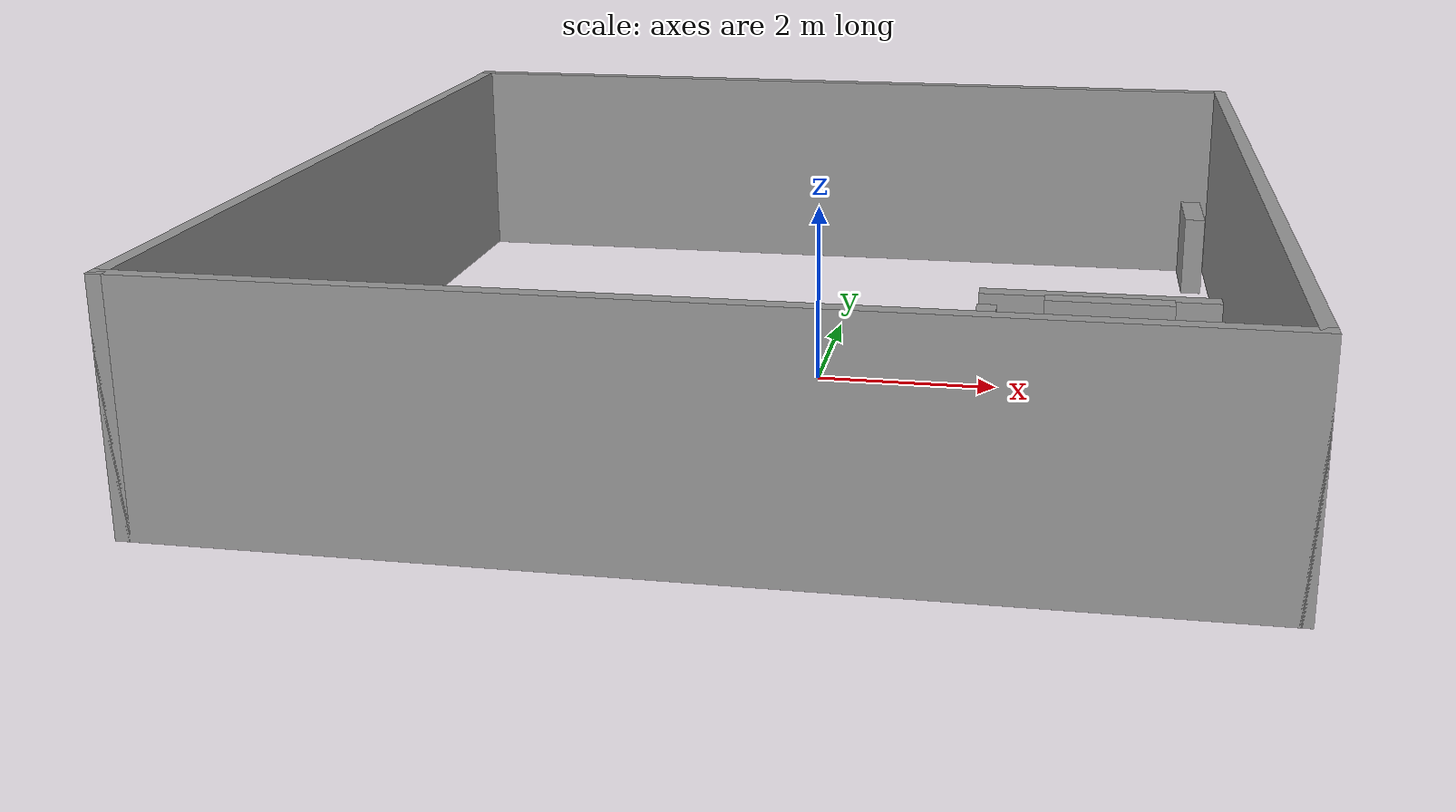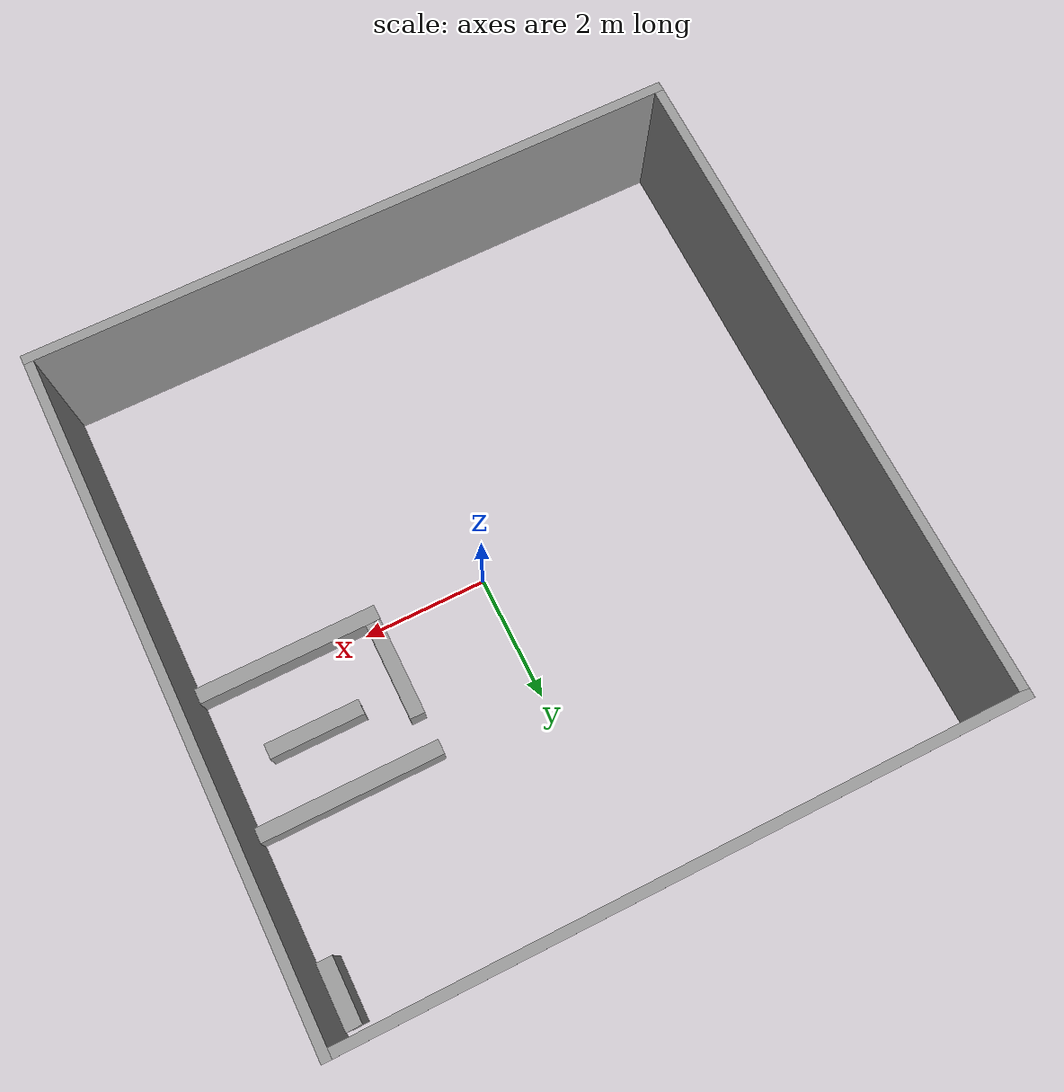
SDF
<?xml version='1.0'?>
<sdf version='1.7'>
  <model name='Laboratory_map'>
    <link name='Wall_0'>
      <pose>3.2 2.1 -0 0 -0 0</pose>
      <self_collide>0</self_collide>
      <inertial>
        <pose>0 0 0 0 -0 0</pose>
        <inertia>
          <ixx>79.3608</ixx>
          <ixy>0</ixy>
          <ixz>0</ixz>
          <iyy>2386.5</iyy>
          <iyz>0</iyz>
          <izz>2336.86</izz>
        </inertia>
        <mass>3096</mass>
      </inertial>
      <enable_wind>0</enable_wind>
      <kinematic>0</kinematic>
      <gravity>1</gravity>
      <visual name='Wall_0_Visual'>
        <pose>0 0 0.25 0 -0 0</pose>
        <geometry>
          <box>
            <size>3 0.24 0.5</size>
          </box>
        </geometry>
        <material>
          <script>
            <uri>file://media/materials/scripts/gazebo.material</uri>
            <name>Gazebo/Grey</name>
          </script>
          <ambient>1 1 1 1</ambient>
          <shader type='pixel'>
            <normal_map>__default__</normal_map>
          </shader>
          <diffuse>0.7 0.7 0.7 1</diffuse>
          <specular>0.01 0.01 0.01 1</specular>
          <emissive>0 0 0 1</emissive>
        </material>
        <meta>
          <layer>0</layer>
        </meta>
        <transparency>0</transparency>
        <cast_shadows>1</cast_shadows>
      </visual>
      <collision name='Wall_0_Collision'>
        <laser_retro>0</laser_retro>
        <max_contacts>10</max_contacts>
        <pose>0 0 0.25 0 -0 0</pose>
        <geometry>
          <box>
            <size>3 0.24 0.5</size>
          </box>
        </geometry>
        <surface>
          <friction>
            <ode>
              <mu>1</mu>
              <mu2>1</mu2>
              <fdir1>0 0 0</fdir1>
              <slip1>0</slip1>
              <slip2>0</slip2>
            </ode>
            <torsional>
              <coefficient>1</coefficient>
              <patch_radius>0</patch_radius>
              <surface_radius>0</surface_radius>
              <use_patch_radius>1</use_patch_radius>
              <ode>
                <slip>0</slip>
              </ode>
            </torsional>
          </friction>
          <bounce>
            <restitution_coefficient>0</restitution_coefficient>
            <threshold>1e+06</threshold>
          </bounce>
          <contact>
            <collide_without_contact>0</collide_without_contact>
            <collide_without_contact_bitmask>1</collide_without_contact_bitmask>
            <collide_bitmask>1</collide_bitmask>
            <ode>
              <soft_cfm>0</soft_cfm>
              <soft_erp>0.2</soft_erp>
              <kp>1e+13</kp>
              <kd>1</kd>
              <max_vel>0.01</max_vel>
              <min_depth>0</min_depth>
            </ode>
            <bullet>
              <split_impulse>1</split_impulse>
              <split_impulse_penetration_threshold>-0.01</split_impulse_penetration_threshold>
              <soft_cfm>0</soft_cfm>
              <soft_erp>0.2</soft_erp>
              <kp>1e+13</kp>
              <kd>1</kd>
            </bullet>
          </contact>
        </surface>
      </collision>
    </link>
    <link name='Wall_1'>
      <pose>-5.55 -0 -0 0 -0 -1.5708</pose>
      <self_collide>0</self_collide>
      <inertial>
        <pose>0 0 0 0 -0 0</pose>
        <inertia>
          <ixx>15865.5</ixx>
          <ixy>0</ixy>
          <ixz>0</ixz>
          <iyy>302697</iyy>
          <iyz>0</iyz>
          <izz>286945</izz>
        </inertia>
        <mass>30352.5</mass>
      </inertial>
      <enable_wind>0</enable_wind>
      <kinematic>0</kinematic>
      <gravity>1</gravity>
      <visual name='Wall_1_Visual'>
        <pose>0 0 1.25 0 -0 0</pose>
        <geometry>
          <box>
            <size>10.65 0.15 2.5</size>
          </box>
        </geometry>
        <material>
          <script>
            <uri>file://media/materials/scripts/gazebo.material</uri>
            <name>Gazebo/Grey</name>
          </script>
          <ambient>0.729 0.741 0.714 1</ambient>
          <shader type='pixel'>
            <normal_map>__default__</normal_map>
          </shader>
          <diffuse>0.7 0.7 0.7 1</diffuse>
          <specular>0.01 0.01 0.01 1</specular>
          <emissive>0 0 0 1</emissive>
        </material>
        <meta>
          <layer>0</layer>
        </meta>
        <transparency>0</transparency>
        <cast_shadows>1</cast_shadows>
      </visual>
      <collision name='Wall_1_Collision'>
        <laser_retro>0</laser_retro>
        <max_contacts>10</max_contacts>
        <pose>0 0 1.25 0 -0 0</pose>
        <geometry>
          <box>
            <size>10.65 0.15 2.5</size>
          </box>
        </geometry>
        <surface>
          <friction>
            <ode>
              <mu>1</mu>
              <mu2>1</mu2>
              <fdir1>0 0 0</fdir1>
              <slip1>0</slip1>
              <slip2>0</slip2>
            </ode>
            <torsional>
              <coefficient>1</coefficient>
              <patch_radius>0</patch_radius>
              <surface_radius>0</surface_radius>
              <use_patch_radius>1</use_patch_radius>
              <ode>
                <slip>0</slip>
              </ode>
            </torsional>
          </friction>
          <bounce>
            <restitution_coefficient>0</restitution_coefficient>
            <threshold>1e+06</threshold>
          </bounce>
          <contact>
            <collide_without_contact>0</collide_without_contact>
            <collide_without_contact_bitmask>1</collide_without_contact_bitmask>
            <collide_bitmask>1</collide_bitmask>
            <ode>
              <soft_cfm>0</soft_cfm>
              <soft_erp>0.2</soft_erp>
              <kp>1e+13</kp>
              <kd>1</kd>
              <max_vel>0.01</max_vel>
              <min_depth>0</min_depth>
            </ode>
            <bullet>
              <split_impulse>1</split_impulse>
              <split_impulse_penetration_threshold>-0.01</split_impulse_penetration_threshold>
              <soft_cfm>0</soft_cfm>
              <soft_erp>0.2</soft_erp>
              <kp>1e+13</kp>
              <kd>1</kd>
            </bullet>
          </contact>
        </surface>
      </collision>
    </link>
    <link name='Wall_2'>
      <pose>-0.425 -5.25 0 0 -0 0</pose>
      <self_collide>0</self_collide>
      <inertial>
        <pose>0 0 0 0 -0 0</pose>
        <inertia>
          <ixx>17355.2</ixx>
          <ixy>0</ixy>
          <ixz>0</ixz>
          <iyy>392820</iyy>
          <iyz>0</iyz>
          <izz>375589</izz>
        </inertia>
        <mass>33202.5</mass>
      </inertial>
      <enable_wind>0</enable_wind>
      <kinematic>0</kinematic>
      <gravity>1</gravity>
      <visual name='Wall_2_Visual'>
        <pose>0 0 1.25 0 -0 0</pose>
        <geometry>
          <box>
            <size>10.4 0.15 2.5</size>
          </box>
        </geometry>
        <material>
          <script>
            <uri>file://media/materials/scripts/gazebo.material</uri>
            <name>Gazebo/Grey</name>
          </script>
          <ambient>0.729 0.741 0.714 1</ambient>
          <shader type='pixel'>
            <normal_map>__default__</normal_map>
          </shader>
          <diffuse>0.7 0.7 0.7 1</diffuse>
          <specular>0.01 0.01 0.01 1</specular>
          <emissive>0 0 0 1</emissive>
        </material>
        <meta>
          <layer>0</layer>
        </meta>
        <transparency>0</transparency>
        <cast_shadows>1</cast_shadows>
      </visual>
      <collision name='Wall_2_Collision'>
        <laser_retro>0</laser_retro>
        <max_contacts>10</max_contacts>
        <pose>0 0 1.25 0 -0 0</pose>
        <geometry>
          <box>
            <size>10.4 0.15 2.5</size>
          </box>
        </geometry>
        <surface>
          <friction>
            <ode>
              <mu>1</mu>
              <mu2>1</mu2>
              <fdir1>0 0 0</fdir1>
              <slip1>0</slip1>
              <slip2>0</slip2>
            </ode>
            <torsional>
              <coefficient>1</coefficient>
              <patch_radius>0</patch_radius>
              <surface_radius>0</surface_radius>
              <use_patch_radius>1</use_patch_radius>
              <ode>
                <slip>0</slip>
              </ode>
            </torsional>
          </friction>
          <bounce>
            <restitution_coefficient>0</restitution_coefficient>
            <threshold>1e+06</threshold>
          </bounce>
          <contact>
            <collide_without_contact>0</collide_without_contact>
            <collide_without_contact_bitmask>1</collide_without_contact_bitmask>
            <collide_bitmask>1</collide_bitmask>
            <ode>
              <soft_cfm>0</soft_cfm>
              <soft_erp>0.2</soft_erp>
              <kp>1e+13</kp>
              <kd>1</kd>
              <max_vel>0.01</max_vel>
              <min_depth>0</min_depth>
            </ode>
            <bullet>
              <split_impulse>1</split_impulse>
              <split_impulse_penetration_threshold>-0.01</split_impulse_penetration_threshold>
              <soft_cfm>0</soft_cfm>
              <soft_erp>0.2</soft_erp>
              <kp>1e+13</kp>
              <kd>1</kd>
            </bullet>
          </contact>
        </surface>
      </collision>
    </link>
    <link name='Wall_3'>
      <pose>4.7 0 0 0 -0 -1.5708</pose>
      <self_collide>0</self_collide>
      <inertial>
        <pose>0 0 0 0 -0 0</pose>
        <inertia>
          <ixx>15865.5</ixx>
          <ixy>0</ixy>
          <ixz>0</ixz>
          <iyy>302697</iyy>
          <iyz>0</iyz>
          <izz>286945</izz>
        </inertia>
        <mass>30352.5</mass>
      </inertial>
      <enable_wind>0</enable_wind>
      <kinematic>0</kinematic>
      <gravity>1</gravity>
      <visual name='Wall_3_Visual'>
        <pose>0 0 1.25 0 -0 0</pose>
        <geometry>
          <box>
            <size>10.65 0.15 2.5</size>
          </box>
        </geometry>
        <material>
          <script>
            <uri>file://media/materials/scripts/gazebo.material</uri>
            <name>Gazebo/Grey</name>
          </script>
          <ambient>0.729 0.741 0.714 1</ambient>
          <shader type='pixel'>
            <normal_map>__default__</normal_map>
          </shader>
          <diffuse>0.7 0.7 0.7 1</diffuse>
          <specular>0.01 0.01 0.01 1</specular>
          <emissive>0 0 0 1</emissive>
        </material>
        <meta>
          <layer>0</layer>
        </meta>
        <transparency>0</transparency>
        <cast_shadows>1</cast_shadows>
      </visual>
      <collision name='Wall_3_Collision'>
        <laser_retro>0</laser_retro>
        <max_contacts>10</max_contacts>
        <pose>0 0 1.25 0 -0 0</pose>
        <geometry>
          <box>
            <size>10.65 0.15 2.5</size>
          </box>
        </geometry>
        <surface>
          <friction>
            <ode>
              <mu>1</mu>
              <mu2>1</mu2>
              <fdir1>0 0 0</fdir1>
              <slip1>0</slip1>
              <slip2>0</slip2>
            </ode>
            <torsional>
              <coefficient>1</coefficient>
              <patch_radius>0</patch_radius>
              <surface_radius>0</surface_radius>
              <use_patch_radius>1</use_patch_radius>
              <ode>
                <slip>0</slip>
              </ode>
            </torsional>
          </friction>
          <bounce>
            <restitution_coefficient>0</restitution_coefficient>
            <threshold>1e+06</threshold>
          </bounce>
          <contact>
            <collide_without_contact>0</collide_without_contact>
            <collide_without_contact_bitmask>1</collide_without_contact_bitmask>
            <collide_bitmask>1</collide_bitmask>
            <ode>
              <soft_cfm>0</soft_cfm>
              <soft_erp>0.2</soft_erp>
              <kp>1e+13</kp>
              <kd>1</kd>
              <max_vel>0.01</max_vel>
              <min_depth>0</min_depth>
            </ode>
            <bullet>
              <split_impulse>1</split_impulse>
              <split_impulse_penetration_threshold>-0.01</split_impulse_penetration_threshold>
              <soft_cfm>0</soft_cfm>
              <soft_erp>0.2</soft_erp>
              <kp>1e+13</kp>
              <kd>1</kd>
            </bullet>
          </contact>
        </surface>
      </collision>
    </link>
    <link name='Wall_4'>
      <pose>1.82 0.75 0 0 -0 1.5708</pose>
      <self_collide>0</self_collide>
      <inertial>
        <pose>0 0 0 0 -0 0</pose>
        <inertia>
          <ixx>41.6644</ixx>
          <ixy>0</ixy>
          <ixz>0</ixz>
          <iyy>369.863</iyy>
          <iyz>0</iyz>
          <izz>343.803</izz>
        </inertia>
        <mass>1625.4</mass>
      </inertial>
      <enable_wind>0</enable_wind>
      <kinematic>0</kinematic>
      <gravity>1</gravity>
      <visual name='Wall_4_Visual'>
        <pose>0 0 0.25 0 -0 0</pose>
        <geometry>
          <box>
            <size>1.575 0.24 0.5</size>
          </box>
        </geometry>
        <material>
          <script>
            <uri>file://media/materials/scripts/gazebo.material</uri>
            <name>Gazebo/Grey</name>
          </script>
          <ambient>1 1 1 1</ambient>
          <shader type='pixel'>
            <normal_map>__default__</normal_map>
          </shader>
          <diffuse>0.7 0.7 0.7 1</diffuse>
          <specular>0.01 0.01 0.01 1</specular>
          <emissive>0 0 0 1</emissive>
        </material>
        <meta>
          <layer>0</layer>
        </meta>
        <transparency>0</transparency>
        <cast_shadows>1</cast_shadows>
      </visual>
      <collision name='Wall_4_Collision'>
        <laser_retro>0</laser_retro>
        <max_contacts>10</max_contacts>
        <pose>0 0 0.25 0 -0 0</pose>
        <geometry>
          <box>
            <size>1.575 0.24 0.5</size>
          </box>
        </geometry>
        <surface>
          <friction>
            <ode>
              <mu>1</mu>
              <mu2>1</mu2>
              <fdir1>0 0 0</fdir1>
              <slip1>0</slip1>
              <slip2>0</slip2>
            </ode>
            <torsional>
              <coefficient>1</coefficient>
              <patch_radius>0</patch_radius>
              <surface_radius>0</surface_radius>
              <use_patch_radius>1</use_patch_radius>
              <ode>
                <slip>0</slip>
              </ode>
            </torsional>
          </friction>
          <bounce>
            <restitution_coefficient>0</restitution_coefficient>
            <threshold>1e+06</threshold>
          </bounce>
          <contact>
            <collide_without_contact>0</collide_without_contact>
            <collide_without_contact_bitmask>1</collide_without_contact_bitmask>
            <collide_bitmask>1</collide_bitmask>
            <ode>
              <soft_cfm>0</soft_cfm>
              <soft_erp>0.2</soft_erp>
              <kp>1e+13</kp>
              <kd>1</kd>
              <max_vel>0.01</max_vel>
              <min_depth>0</min_depth>
            </ode>
            <bullet>
              <split_impulse>1</split_impulse>
              <split_impulse_penetration_threshold>-0.01</split_impulse_penetration_threshold>
              <soft_cfm>0</soft_cfm>
              <soft_erp>0.2</soft_erp>
              <kp>1e+13</kp>
              <kd>1</kd>
            </bullet>
          </contact>
        </surface>
      </collision>
    </link>
    <link name='Wall_5'>
      <pose>3.2 -0.16 0 0 -0 0</pose>
      <self_collide>0</self_collide>
      <inertial>
        <pose>0 0 0 0 -0 0</pose>
        <inertia>
          <ixx>79.3608</ixx>
          <ixy>0</ixy>
          <ixz>0</ixz>
          <iyy>2386.5</iyy>
          <iyz>0</iyz>
          <izz>2336.86</izz>
        </inertia>
        <mass>3096</mass>
      </inertial>
      <enable_wind>0</enable_wind>
      <kinematic>0</kinematic>
      <gravity>1</gravity>
      <visual name='Wall_5_Visual'>
        <pose>0 0 0.25 0 -0 0</pose>
        <geometry>
          <box>
            <size>3 0.24 0.5</size>
          </box>
        </geometry>
        <material>
          <script>
            <uri>file://media/materials/scripts/gazebo.material</uri>
            <name>Gazebo/Grey</name>
          </script>
          <ambient>1 1 1 1</ambient>
          <shader type='pixel'>
            <normal_map>__default__</normal_map>
          </shader>
          <diffuse>0.7 0.7 0.7 1</diffuse>
          <specular>0.01 0.01 0.01 1</specular>
          <emissive>0 0 0 1</emissive>
        </material>
        <meta>
          <layer>0</layer>
        </meta>
        <transparency>0</transparency>
        <cast_shadows>1</cast_shadows>
      </visual>
      <collision name='Wall_5_Collision'>
        <laser_retro>0</laser_retro>
        <max_contacts>10</max_contacts>
        <pose>0 0 0.25 0 -0 0</pose>
        <geometry>
          <box>
            <size>3 0.24 0.5</size>
          </box>
        </geometry>
        <surface>
          <friction>
            <ode>
              <mu>1</mu>
              <mu2>1</mu2>
              <fdir1>0 0 0</fdir1>
              <slip1>0</slip1>
              <slip2>0</slip2>
            </ode>
            <torsional>
              <coefficient>1</coefficient>
              <patch_radius>0</patch_radius>
              <surface_radius>0</surface_radius>
              <use_patch_radius>1</use_patch_radius>
              <ode>
                <slip>0</slip>
              </ode>
            </torsional>
          </friction>
          <bounce>
            <restitution_coefficient>0</restitution_coefficient>
            <threshold>1e+06</threshold>
          </bounce>
          <contact>
            <collide_without_contact>0</collide_without_contact>
            <collide_without_contact_bitmask>1</collide_without_contact_bitmask>
            <collide_bitmask>1</collide_bitmask>
            <ode>
              <soft_cfm>0</soft_cfm>
              <soft_erp>0.2</soft_erp>
              <kp>1e+13</kp>
              <kd>1</kd>
              <max_vel>0.01</max_vel>
              <min_depth>0</min_depth>
            </ode>
            <bullet>
              <split_impulse>1</split_impulse>
              <split_impulse_penetration_threshold>-0.01</split_impulse_penetration_threshold>
              <soft_cfm>0</soft_cfm>
              <soft_erp>0.2</soft_erp>
              <kp>1e+13</kp>
              <kd>1</kd>
            </bullet>
          </contact>
        </surface>
      </collision>
    </link>
    <link name='Wall_6'>
      <pose>-0.425 5.25 -0 0 -0 3.14159</pose>
      <self_collide>0</self_collide>
      <inertial>
        <pose>0 0 0 0 -0 0</pose>
        <inertia>
          <ixx>17355.2</ixx>
          <ixy>0</ixy>
          <ixz>0</ixz>
          <iyy>392820</iyy>
          <iyz>0</iyz>
          <izz>375589</izz>
        </inertia>
        <mass>33202.5</mass>
      </inertial>
      <enable_wind>0</enable_wind>
      <kinematic>0</kinematic>
      <gravity>1</gravity>
      <visual name='Wall_6_Visual'>
        <pose>0 0 1.25 0 -0 0</pose>
        <geometry>
          <box>
            <size>10.4 0.15 2.5</size>
          </box>
        </geometry>
        <material>
          <script>
            <uri>file://media/materials/scripts/gazebo.material</uri>
            <name>Gazebo/Grey</name>
          </script>
          <ambient>0.729 0.741 0.714 1</ambient>
          <shader type='pixel'>
            <normal_map>__default__</normal_map>
          </shader>
          <diffuse>0.7 0.7 0.7 1</diffuse>
          <specular>0.01 0.01 0.01 1</specular>
          <emissive>0 0 0 1</emissive>
        </material>
        <meta>
          <layer>0</layer>
        </meta>
        <transparency>0</transparency>
        <cast_shadows>1</cast_shadows>
      </visual>
      <collision name='Wall_6_Collision'>
        <laser_retro>0</laser_retro>
        <max_contacts>10</max_contacts>
        <pose>0 0 1.25 0 -0 0</pose>
        <geometry>
          <box>
            <size>10.4 0.15 2.5</size>
          </box>
        </geometry>
        <surface>
          <friction>
            <ode>
              <mu>1</mu>
              <mu2>1</mu2>
              <fdir1>0 0 0</fdir1>
              <slip1>0</slip1>
              <slip2>0</slip2>
            </ode>
            <torsional>
              <coefficient>1</coefficient>
              <patch_radius>0</patch_radius>
              <surface_radius>0</surface_radius>
              <use_patch_radius>1</use_patch_radius>
              <ode>
                <slip>0</slip>
              </ode>
            </torsional>
          </friction>
          <bounce>
            <restitution_coefficient>0</restitution_coefficient>
            <threshold>1e+06</threshold>
          </bounce>
          <contact>
            <collide_without_contact>0</collide_without_contact>
            <collide_without_contact_bitmask>1</collide_without_contact_bitmask>
            <collide_bitmask>1</collide_bitmask>
            <ode>
              <soft_cfm>0</soft_cfm>
              <soft_erp>0.2</soft_erp>
              <kp>1e+13</kp>
              <kd>1</kd>
              <max_vel>0.01</max_vel>
              <min_depth>0</min_depth>
            </ode>
            <bullet>
              <split_impulse>1</split_impulse>
              <split_impulse_penetration_threshold>-0.01</split_impulse_penetration_threshold>
              <soft_cfm>0</soft_cfm>
              <soft_erp>0.2</soft_erp>
              <kp>1e+13</kp>
              <kd>1</kd>
            </bullet>
          </contact>
        </surface>
      </collision>
    </link>
    <link name='Wall_7'>
      <inertial>
        <mass>700</mass>
        <inertia>
          <ixx>116.667</ixx>
          <ixy>0</ixy>
          <ixz>0</ixz>
          <iyy>116.667</iyy>
          <iyz>0</iyz>
          <izz>116.667</izz>
        </inertia>
        <pose>0 0 0 0 -0 0</pose>
      </inertial>
      <pose>4.4 4.6 0.5 0 -0 0</pose>
      <gravity>1</gravity>
      <self_collide>0</self_collide>
      <kinematic>0</kinematic>
      <enable_wind>0</enable_wind>
      <visual name='Wall_7_Visual'>
        <pose>0 0 0 0 -0 0</pose>
        <geometry>
          <box>
            <size>0.25 1 1</size>
          </box>
        </geometry>
        <material>
          <lighting>1</lighting>
          <script>
            <uri>file://media/materials/scripts/gazebo.material</uri>
            <name>Gazebo/Grey</name>
          </script>
          <shader type='pixel'>
            <normal_map>__default__</normal_map>
          </shader>
          <ambient>0.3 0.3 0.3 1</ambient>
          <diffuse>0.7 0.7 0.7 1</diffuse>
          <specular>0.01 0.01 0.01 1</specular>
          <emissive>0 0 0 1</emissive>
        </material>
        <transparency>0</transparency>
        <cast_shadows>1</cast_shadows>
      </visual>
      <collision name='Wall_7_Collision'>
        <laser_retro>0</laser_retro>
        <max_contacts>10</max_contacts>
        <pose>0 0 0 0 -0 0</pose>
        <geometry>
          <box>
            <size>0.25 1 1</size>
          </box>
        </geometry>
        <surface>
          <friction>
            <ode>
              <mu>1</mu>
              <mu2>1</mu2>
              <fdir1>0 0 0</fdir1>
              <slip1>0</slip1>
              <slip2>0</slip2>
            </ode>
            <torsional>
              <coefficient>1</coefficient>
              <patch_radius>0</patch_radius>
              <surface_radius>0</surface_radius>
              <use_patch_radius>1</use_patch_radius>
              <ode>
                <slip>0</slip>
              </ode>
            </torsional>
          </friction>
          <bounce>
            <restitution_coefficient>0</restitution_coefficient>
            <threshold>1e+06</threshold>
          </bounce>
          <contact>
            <collide_without_contact>0</collide_without_contact>
            <collide_without_contact_bitmask>1</collide_without_contact_bitmask>
            <collide_bitmask>1</collide_bitmask>
            <ode>
              <soft_cfm>0</soft_cfm>
              <soft_erp>0.2</soft_erp>
              <kp>1e+13</kp>
              <kd>1</kd>
              <max_vel>0.01</max_vel>
              <min_depth>0</min_depth>
            </ode>
            <bullet>
              <split_impulse>1</split_impulse>
              <split_impulse_penetration_threshold>-0.01</split_impulse_penetration_threshold>
              <soft_cfm>0</soft_cfm>
              <soft_erp>0.2</soft_erp>
              <kp>1e+13</kp>
              <kd>1</kd>
            </bullet>
          </contact>
        </surface>
      </collision>
    </link>
    <link name='Wall_8'>
      <inertial>
        <mass>1548</mass>
        <inertia>
          <ixx>39.6804</ixx>
          <ixy>0</ixy>
          <ixz>0</ixz>
          <iyy>322.5</iyy>
          <iyz>0</iyz>
          <izz>297.68</izz>
        </inertia>
        <pose>0 0 0 0 -0 0</pose>
      </inertial>
      <pose>3.25 1.1 0.5 0 -0 0</pose>
      <gravity>1</gravity>
      <self_collide>0</self_collide>
      <kinematic>0</kinematic>
      <enable_wind>0</enable_wind>
      <visual name='Wall_8_Visual'>
        <pose>0 0 0 0 -0 0</pose>
        <geometry>
          <box>
            <size>1.5 0.24 0.5</size>
          </box>
        </geometry>
        <material>
          <lighting>1</lighting>
          <script>
            <uri>file://media/materials/scripts/gazebo.material</uri>
            <name>Gazebo/Grey</name>
          </script>
          <shader type='pixel'>
            <normal_map>__default__</normal_map>
          </shader>
          <ambient>1 1 1 1</ambient>
          <diffuse>0.7 0.7 0.7 1</diffuse>
          <specular>0.01 0.01 0.01 1</specular>
          <emissive>0 0 0 1</emissive>
        </material>
        <transparency>0</transparency>
        <cast_shadows>1</cast_shadows>
      </visual>
      <collision name='Wall_8_Collision'>
        <laser_retro>0</laser_retro>
        <max_contacts>10</max_contacts>
        <pose>0 0 0 0 -0 0</pose>
        <geometry>
          <box>
            <size>1.5 0.24 0.5</size>
          </box>
        </geometry>
        <surface>
          <friction>
            <ode>
              <mu>1</mu>
              <mu2>1</mu2>
              <fdir1>0 0 0</fdir1>
              <slip1>0</slip1>
              <slip2>0</slip2>
            </ode>
            <torsional>
              <coefficient>1</coefficient>
              <patch_radius>0</patch_radius>
              <surface_radius>0</surface_radius>
              <use_patch_radius>1</use_patch_radius>
              <ode>
                <slip>0</slip>
              </ode>
            </torsional>
          </friction>
          <bounce>
            <restitution_coefficient>0</restitution_coefficient>
            <threshold>1e+06</threshold>
          </bounce>
          <contact>
            <collide_without_contact>0</collide_without_contact>
            <collide_without_contact_bitmask>1</collide_without_contact_bitmask>
            <collide_bitmask>1</collide_bitmask>
            <ode>
              <soft_cfm>0</soft_cfm>
              <soft_erp>0.2</soft_erp>
              <kp>1e+13</kp>
              <kd>1</kd>
              <max_vel>0.01</max_vel>
              <min_depth>0</min_depth>
            </ode>
            <bullet>
              <split_impulse>1</split_impulse>
              <split_impulse_penetration_threshold>-0.01</split_impulse_penetration_threshold>
              <soft_cfm>0</soft_cfm>
              <soft_erp>0.2</soft_erp>
              <kp>1e+13</kp>
              <kd>1</kd>
            </bullet>
          </contact>
        </surface>
      </collision>
    </link>
    <static>0</static>
    <allow_auto_disable>1</allow_auto_disable>
  </model>
</sdf>
